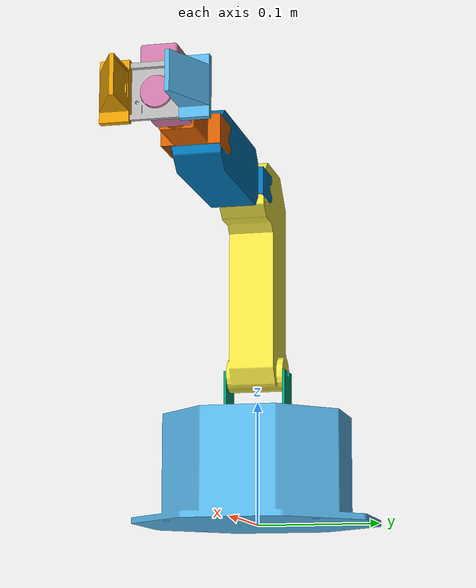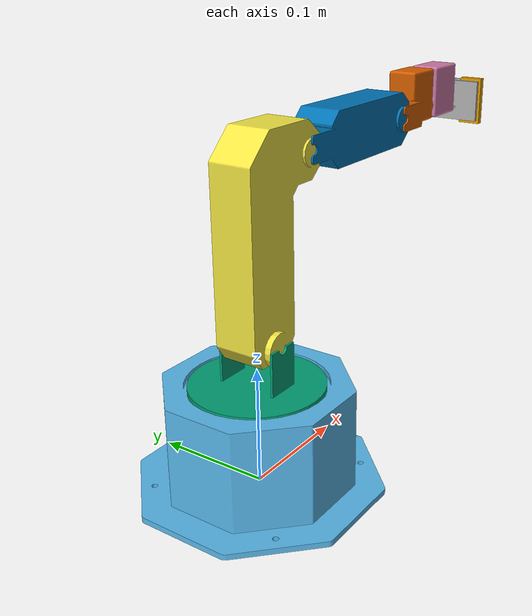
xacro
<?xml version="1.0" ?>
<robot name="widowx_arm" xmlns:xacro="http://ros.org/wiki/xacro">

	<xacro:include filename="$(find widowx_arm_description)/urdf/common_materials.xacro" />

	<xacro:property name="M_SCALE" value="0.001"/>
	<xacro:property name="M_PI" value="3.14159"/>

	<!-- base_link -->
	<link name="base_footprint">
		<visual>
			<origin xyz="0 0 0" rpy="0 0 0"/>
			<geometry>
				<box size="0.001 0.001 0.001" />
			</geometry>
		</visual>
	</link>

	<!-- arm_base_link -->
	<joint name="arm_base_joint" type="fixed">
		<origin xyz="0 0 0" rpy="0 0 0" />
		<parent link="base_footprint" />
		<child link="arm_base_link"/>
	</joint>
	<link name="arm_base_link">
		<visual>
			<origin xyz="0 0 0" rpy="0 0 0" />
			<geometry>
				<mesh filename="package://widowx_arm_description/meshes/base_link.stl"/>
			</geometry>
			<xacro:material_black />
		</visual>
		<collision>
			<origin xyz="0 0 0" rpy="0 0 0" />
			<geometry>
				<mesh filename="package://widowx_arm_description/meshes/base_link.stl"/>
			</geometry>
		</collision>
		<inertial>
			<origin xyz="0 0 0" rpy="0 0 0" />
			<mass value="1" />
			<inertia ixx="1.0" ixy="0.0" ixz="0.0" iyy="1.0" iyz="0.0" izz="1.0" />
		</inertial>
	</link>

	<!-- shoulder_link -->
	<joint name="joint_1" type="revolute">
		<origin xyz="0 0 ${M_SCALE*125}" rpy="0 0 0" />
		<parent link="arm_base_link" />
		<child link="shoulder_link" />
		<axis xyz="0 0 1" />
		<limit lower="-2.617" upper="2.617" effort="6" velocity="0.785" />
	</joint>
	<link name="shoulder_link">
		<visual>
			<origin xyz="0 0 0" rpy="0 0 0" />
			<geometry>
				<mesh filename="package://widowx_arm_description/meshes/shoulder_link.stl" />
			</geometry>
			<xacro:material_black />
		</visual>
		<collision>
			<origin xyz="0 0 0" rpy="0 0 0" />
			<geometry>
				<mesh filename="package://widowx_arm_description/meshes/shoulder_link.stl"/>
			</geometry>
		</collision>
		<inertial>
			<origin xyz="0 0 0" rpy="0 0 0" />
			<mass value="1" />
			<inertia ixx="1.0" ixy="0.0" ixz="0.0" iyy="1.0" iyz="0.0" izz="1.0" />
		</inertial>
	</link>
	<transmission name="tran1">
		<type>transmission_interface/SimpleTransmission</type>
		<joint name="joint_1"/>
		<actuator name="motor1">
			<hardwareInterface>EffortJointInterface</hardwareInterface>
			<mechanicalReduction>1</mechanicalReduction>
		</actuator>
	</transmission>

	<!-- biceps_link -->
	<joint name="joint_2" type="revolute">
		<!--origin xyz="0.04825 0 0.14203" rpy="0 0 0" /-->
		<origin xyz="0 0 0" rpy="0 0 0" />
		<parent link="shoulder_link" />
		<child link="biceps_link" />
		<axis xyz="0 1 0" />
		<limit lower="-1.571" upper="1.571" effort="6" velocity="1.571" />
	</joint>
	<link name="biceps_link">
		<visual>
			<origin xyz="0 0 0" rpy="0 0 0" />
			<geometry>
				<mesh filename="package://widowx_arm_description/meshes/biceps_link.new.stl" />
			</geometry>
			<xacro:material_black />
		</visual>
		<collision>
			<origin xyz="0 0 0" rpy="0 0 0" />
			<geometry>
				<mesh filename="package://widowx_arm_description/meshes/biceps_link.new.stl" />
			</geometry>
		</collision>
		<inertial>
			<origin xyz="0 0 0" rpy="0 0 0" />
			<mass value="1" />
			<inertia ixx="1.0" ixy="0.0" ixz="0.0" iyy="1.0" iyz="0.0" izz="1.0" />
		</inertial>
	</link>
	<transmission name="tran2">
		<type>transmission_interface/SimpleTransmission</type>
		<joint name="joint_2"/>
		<actuator name="motor2">
			<hardwareInterface>EffortJointInterface</hardwareInterface>
			<mechanicalReduction>1</mechanicalReduction>
		</actuator>
	 </transmission>

	<!-- forearm_link -->
	<joint name="joint_3" type="revolute">
		<origin xyz="${M_SCALE*48.25} 0 ${M_SCALE*142.03}" rpy="0 ${M_PI/2.0} 0" />
		<parent link="biceps_link" />
		<child link="forearm_link" />
		<axis xyz="0 1 0" />
		<limit lower="-1.571" upper="1.571" effort="6" velocity="1.571" />
	</joint>
	<link name="forearm_link">
		<visual>
			<origin xyz="0 0 0" rpy="0 0 0" />
			<geometry>
				<mesh filename="package://widowx_arm_description/meshes/forearm_link.new.stl"/>
			</geometry>
			<xacro:material_black />
		</visual>
		<collision>
			<origin xyz="0 0 0" rpy="0 0 0" />
			<geometry>
				<mesh filename="package://widowx_arm_description/meshes/forearm_link.new.stl"/>
			</geometry>
		</collision>
		<inertial>
			<origin xyz="0 0 0" rpy="0 0 0" />
			<mass value="1" />
			<inertia ixx="1.0" ixy="0.0" ixz="0.0" iyy="1.0" iyz="0.0" izz="1.0"/>
		</inertial>
	</link>
	<transmission name="tran3">
		<type>transmission_interface/SimpleTransmission</type>
		<joint name="joint_3"/>
		<actuator name="motor3">
			<hardwareInterface>EffortJointInterface</hardwareInterface>
			<mechanicalReduction>1</mechanicalReduction>
		</actuator>
	</transmission>

	<!-- wrist_1_link -->
	<joint name="joint_4" type="revolute">
		<origin xyz="0 0 ${M_SCALE*142.03}" rpy="0 0 0" />
		<parent link="forearm_link" />
		<child link="wrist_1_link" />
		<axis xyz="0 1 0" />
		<limit lower="-1.745" upper="1.745" effort="6" velocity="1.571" />
	</joint>
	<link name="wrist_1_link">
		<visual>
			<origin xyz="0 0 0" rpy="0 0 0" />
			<geometry>
				<mesh filename="package://widowx_arm_description/meshes/wrist_1_link.stl"/>
			</geometry>
			<xacro:material_black />
		</visual>
		<collision>
			<origin xyz="0 0 0" rpy="0 0 0" />
			<geometry>
				<mesh filename="package://widowx_arm_description/meshes/wrist_1_link.stl"/>
			</geometry>
		</collision>
		<inertial>
			<origin xyz="0 0 0" rpy="0 0 0" />
			<mass value="1" />
			<inertia ixx="1.0" ixy="0.0" ixz="0.0" iyy="1.0" iyz="0.0" izz="1.0" />
		</inertial>
	</link>
	<transmission name="tran4">
		<type>transmission_interface/SimpleTransmission</type>
		<joint name="joint_4"/>
		<actuator name="motor4">
			<hardwareInterface>EffortJointInterface</hardwareInterface>
			<mechanicalReduction>1</mechanicalReduction>
		</actuator>
	</transmission>

	<!-- wrist_2_link -->
	<joint name="joint_5" type="revolute">
		<origin xyz="0 0 ${M_SCALE*71.5}" rpy="0 0 0" />
		<parent link="wrist_1_link" />
		<child link="wrist_2_link" />
		<axis xyz="0 0 1" />
		<limit lower="-2.617" upper="2.617" effort="6" velocity="1.571" />
	</joint>
	<link name="wrist_2_link">
		<visual>
			<origin xyz="0 0 0" rpy="0 0 0" />
			<geometry>
				<mesh filename="package://widowx_arm_description/meshes/wrist_2_link.new.stl"/>
			</geometry>
			<xacro:material_black />
		</visual>
		<collision>
			<origin xyz="0 0 0" rpy="0 0 0" />
			<geometry>
				<mesh filename="package://widowx_arm_description/meshes/wrist_2_link.new.stl"/>
			</geometry>
		</collision>
		<inertial>
			<origin xyz="0 0 0" rpy="0 0 0" />
			<mass value="1" />
			<inertia ixx="1.0" ixy="0.0" ixz="0.0" iyy="1.0" iyz="0.0" izz="1.0" />
		</inertial>
	</link>
	<transmission name="tran5">
		<type>transmission_interface/SimpleTransmission</type>
		<joint name="joint_5"/>
		<actuator name="motor5">
			<hardwareInterface>EffortJointInterface</hardwareInterface>
			<mechanicalReduction>1</mechanicalReduction>
		</actuator>
	</transmission>

	<!-- gripper -->
	<xacro:include filename="$(find widowx_arm_description)/urdf/widowx_gripper.xacro"/>

</robot>

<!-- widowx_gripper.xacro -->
<robot xmlns:xacro="http://ros.org/wiki/xacro">

   <!-- gripper_rail_link -->

   <joint name="joint_6" type="fixed">
      <origin xyz = "0 0 ${M_SCALE*43}" rpy="0 0 0" />
      <parent link="wrist_2_link" />
      <child link="gripper_rail_link" />
      <axis xyz="0 0 1" />
   </joint>
   <link name="gripper_rail_link">
      <visual>
         <origin xyz="0 0 0" rpy="0 0 1.57" />
         <geometry>
            <mesh filename="package://widowx_arm_description/meshes/gripper_rail_link.stl"/>
         </geometry>
         <xacro:material_black />
      </visual>
      <collision>
         <origin xyz="0 0 0" rpy="0 0 1.57" />
         <geometry>
            <mesh filename="package://widowx_arm_description/meshes/gripper_rail_link.stl"/>
         </geometry>
      </collision>
      <inertial>
         <origin xyz="0 0 0" rpy="0 0 0" />
         <mass value="1" />
         <inertia ixx="1.0" ixy="0.0" ixz="0.0" iyy="1.0" iyz="0.0" izz="1.0" />
      </inertial>
   </link>
   <transmission name="tran6">
      <type>transmission_interface/SimpleTransmission</type>
      <joint name="joint_6"/>
      <actuator name="motor6">
         <hardwareInterface>EffortJointInterface</hardwareInterface>
         <mechanicalReduction>1</mechanicalReduction>
      </actuator>
   </transmission>

   <!-- gripper_1_link -->
   <joint name="gripper_joint" type="prismatic">
      <origin xyz="0 0 0" rpy="0 0 0" />
      <parent link="gripper_rail_link" />
      <child link="gripper_1_link" />
      <axis xyz="0 -1 0" />
      <limit lower="0.002" upper="0.031" effort="0" velocity="0.5" />
   </joint>
   <link name="gripper_1_link">
      <visual>
         <origin xyz="0 -0.0007 0" rpy="0 0 1.57" />
         <geometry>
            <mesh filename="package://widowx_arm_description/meshes/gripper_hand_fixed_link.stl"/>
         </geometry>
         <xacro:material_black />
      </visual>
      <collision>
         <origin xyz="0 -0.0007 0" rpy="0 0 1.57" />
         <geometry>
            <mesh filename="package://widowx_arm_description/meshes/gripper_hand_fixed_link.stl"/>
         </geometry>
      </collision>
      <inertial>
         <origin xyz="0 0 0" rpy="0 0 0" />
         <mass value="1" />
         <inertia ixx="1.0" ixy="0.0" ixz="0.0" iyy="1.0" iyz="0.0" izz="1.0" />
      </inertial>
   </link>
   <transmission name="tran7">
      <type>transmission_interface/SimpleTransmission</type>
      <joint name="gripper_joint"/>
      <actuator name="motor7">
         <hardwareInterface>EffortJointInterface</hardwareInterface>
         <mechanicalReduction>1</mechanicalReduction>
      </actuator>
   </transmission>

   <!-- gripper_2_link -->
   <joint name="gripper_prismatic_joint_2" type="prismatic">
      <origin xyz="0 0 0" rpy="0 0 0" />
      <parent link="gripper_rail_link" />
      <child link="gripper_2_link" />
      <mimic joint="gripper_joint" />
      <axis xyz="0 1 0" />
      <limit lower="0.002" upper="0.031" effort="0" velocity="0.5" />
   </joint>
   <link name="gripper_2_link">
      <visual>
         <origin xyz="0 0.0007 0" rpy="0 0 -1.57" />
         <geometry>
            <mesh filename="package://widowx_arm_description/meshes/gripper_hand_fixed_link.stl"/>
         </geometry>
         <xacro:material_black />
      </visual>
      <collision>
         <origin xyz="0 0.0007 0" rpy="0 0 -1.57" />
         <geometry>
            <mesh filename="package://widowx_arm_description/meshes/gripper_hand_fixed_link.stl"/>
         </geometry>
      </collision>
      <inertial>
         <origin xyz="0 0 0" rpy="0 0 0" />
         <mass value="1" />
         <inertia ixx="1.0" ixy="0.0" ixz="0.0" iyy="1.0" iyz="0.0" izz="1.0" />
      </inertial>
   </link>

</robot>
